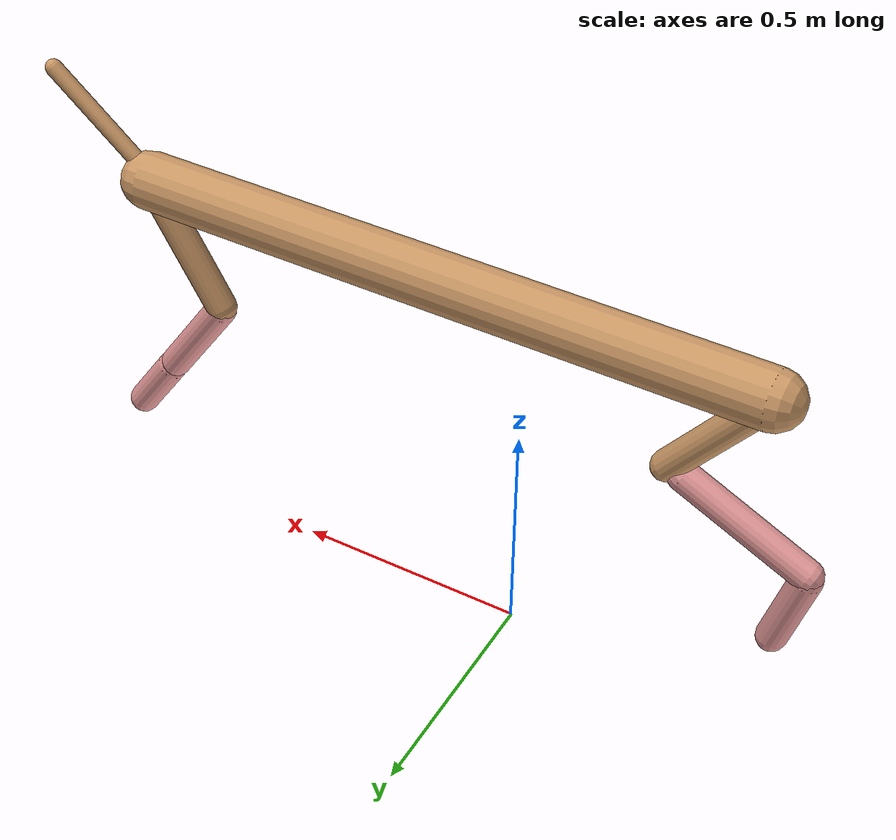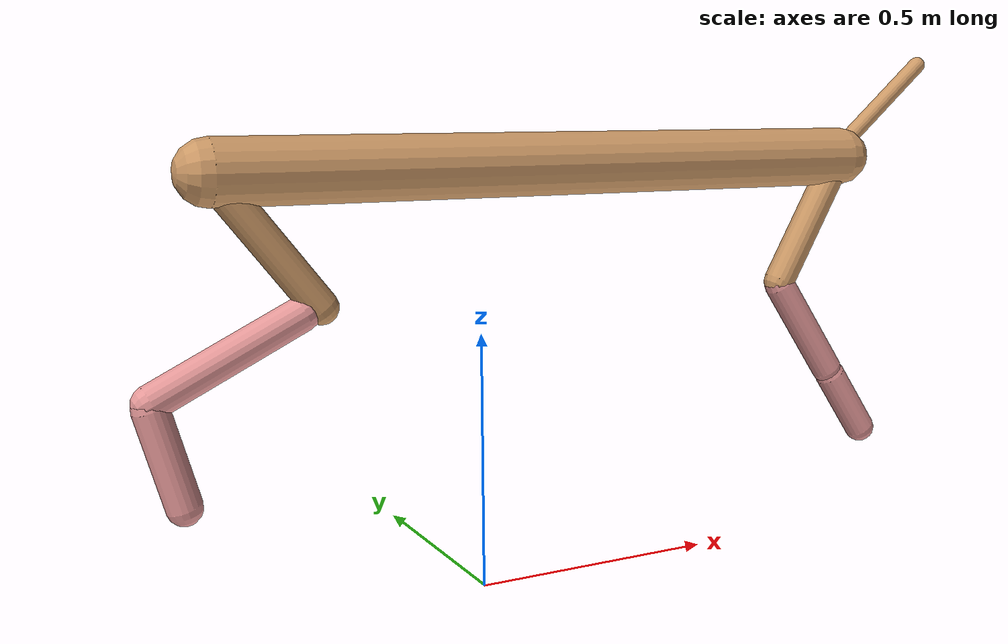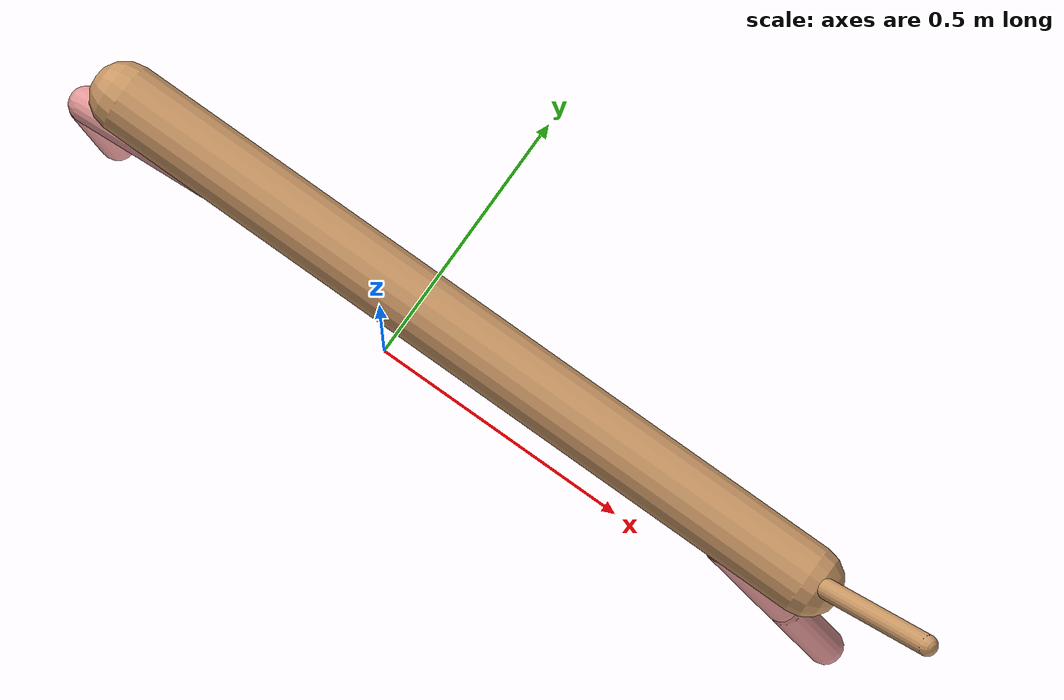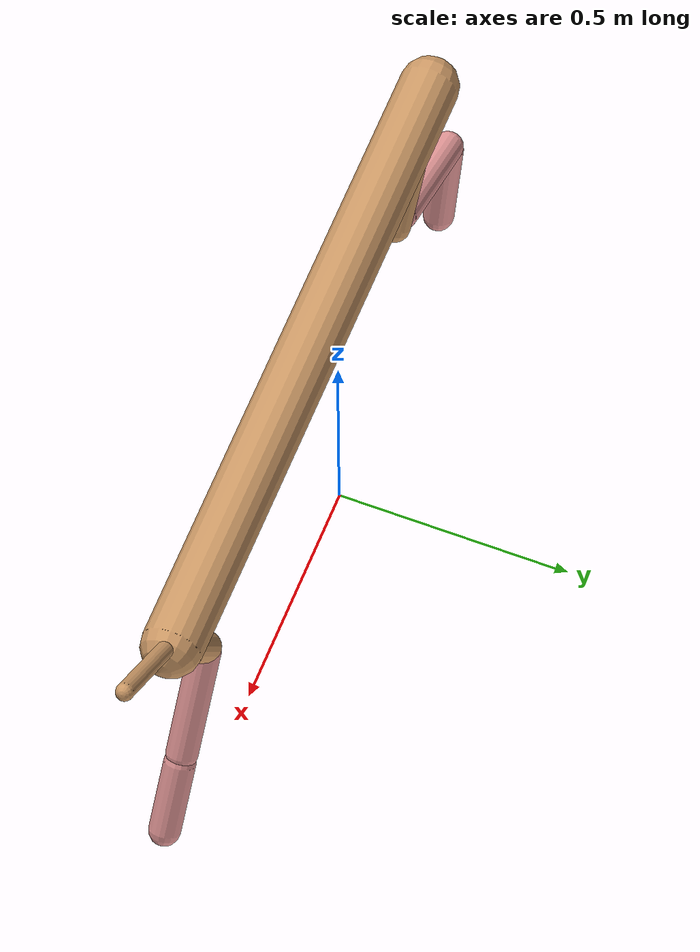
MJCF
<mujoco model="cheetah">
  <compiler angle="radian" coordinate="local" inertiafromgeom="true" settotalmass="14" />
  <default>
    <joint armature=".1" damping=".01" limited="true" solimplimit="0 .8 .03" solreflimit=".02 1" stiffness="8" />
    <geom conaffinity="0" condim="3" contype="1" friction="0.8 .1 .1" rgba="0.8 0.6 .4 1" solimp="0.0 0.8 0.01" solref="0.02 1" />
    <motor ctrllimited="true" ctrlrange="-1 1" />
  </default>
  <size nstack="300000" nuser_geom="1" />
  <option gravity="0 0 -9.81" timestep="0.01" />
  <worldbody>
    <body name="torso" pos="0.0 0.0 0.8199342187071732">
      <joint armature="0" axis="1 0 0" damping="0" limited="false" name="ignorex" pos="0 0 0" stiffness="0" type="slide" />
      <joint armature="0" axis="0 0 1" damping="0" limited="false" name="ignorez" pos="0 0 0" stiffness="0" type="slide" />
      <joint armature="0" axis="0 1 0" damping="0" limited="false" name="ignorey" pos="0 0 0" stiffness="0" type="hinge" />
      <geom fromto="-0.5 0.0 0.0 0.852705803458173 0.0 0.0" name="torso" size="0.060858634280825934" type="capsule" />
      <geom axisangle="0 1 0 .87" name="head" pos="0.9527058034581731 0.0 0.1" size="0.01766518760897879 0.15" type="capsule" />

      <body name="bthigh" pos="-.5 0 0">
        <joint axis="0 1 0" damping="6" name="bthigh" pos="0 0 0" range="-.52 1.05" stiffness="240" type="hinge" />
        <geom axisangle="0 1 0 -3.8" name="bthigh" pos="0.09975062692295514 0.0 -0.12967581499984168" size="0.0322 0.14459099774342618" type="capsule" />
        <body name="bshin" pos="0.15950125384591027 0.0 -0.24935162999968336">
          <joint axis="0 1 0" damping="4.5" name="bshin" pos="0 0 0" range="-.785 .785" stiffness="180" type="hinge" />
          <geom axisangle="0 1 0 -2.03" name="bshin" pos="-0.13962156268331732 0.0 -0.06981078134165866" rgba="0.9 0.6 0.6 1" size="0.0322 0.1495768942173374" type="capsule" />
          <body name="bfoot" pos="-0.27924312536663465 0.0 -0.13962156268331732">
            <joint axis="0 1 0" damping="3" name="bfoot" pos="0 0 0" range="-.4 .785" stiffness="120" type="hinge" />
            <geom axisangle="0 1 0 -.27" name="bfoot" pos="0.029921657299021444 0.0 -0.09674669193350267" rgba="0.9 0.6 0.6 1" size="0.0322 0.09373485370953145" type="capsule" />
            <inertial mass="10" />
          </body>
        </body>
      </body>
      <body name="fthigh" pos="0.8527058034581732 0.0 0.0">
        <joint axis="0 1 0" damping="4.5" name="fthigh" pos="0 0 0" range="-1.5 0.8" stiffness="180" type="hinge" />
        <geom axisangle="0 1 0 .52" name="fthigh" pos="-0.07840729418842049 0.0 -0.13441250432300655" size="0.0322 0.14968540908792266" type="capsule" />
        <body name="fshin" pos="-0.15681458837684098 0.0 -0.2688250086460131">
          <joint axis="0 1 0" damping="3" name="fshin" pos="0 0 0" range="-1.2 1.1" stiffness="120" type="hinge" />
          <geom axisangle="0 1 0 -.6" name="fshin" pos="0.0727859386259308 0.0 -0.10078053040513496" rgba="0.9 0.6 0.6 1" size="0.0322 0.11929814558887067" type="capsule" />
          <body name="ffoot" pos="0.1455718772518616 0.0 -0.20156106081026992">
            <joint axis="0 1 0" damping="1.5" name="ffoot" pos="0 0 0" range="-3.1 -0.3" stiffness="60" type="hinge" />
            <geom axisangle="0 1 0 -.6" name="ffoot" pos="0.04974882190971863 0.0 -0.07738705630400677" rgba="0.9 0.6 0.6 1" size="0.0322 0.0787817942568014" type="capsule" />
            <inertial mass="10" />
          </body>
        </body>
      </body>
    </body>
  </worldbody>
  <actuator>
    <motor gear="120" joint="bthigh" name="bthigh" />
    <motor gear="90" joint="bshin" name="bshin" />
    <motor gear="60" joint="bfoot" name="bfoot" />
    <motor gear="120" joint="fthigh" name="fthigh" />
    <motor gear="60" joint="fshin" name="fshin" />
    <motor gear="30" joint="ffoot" name="ffoot" />
  </actuator>
</mujoco>
